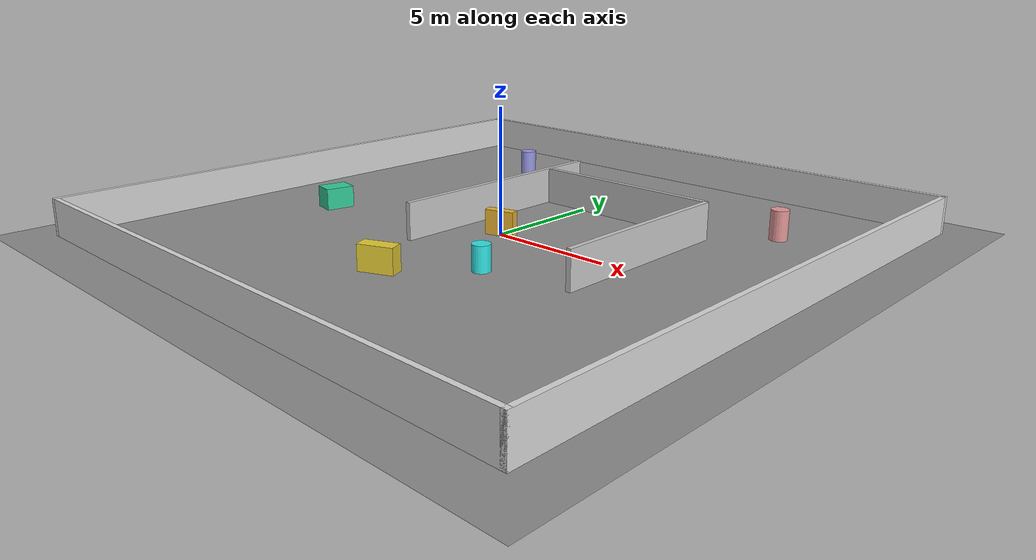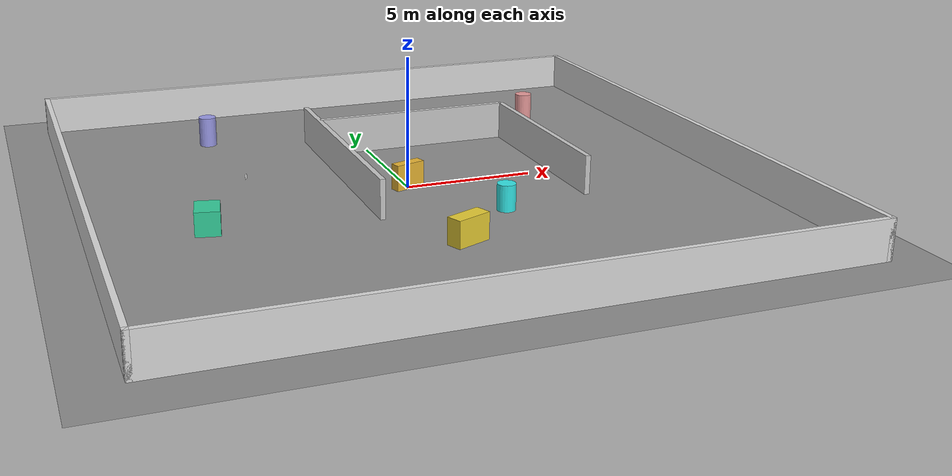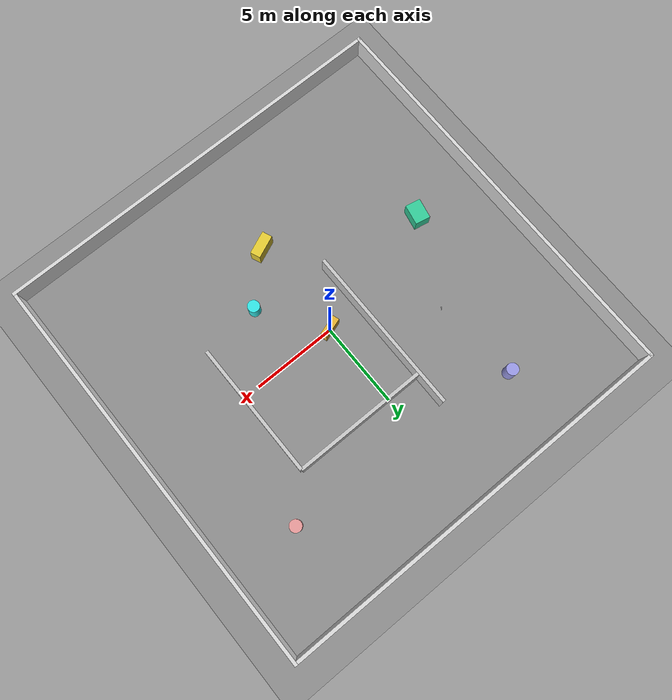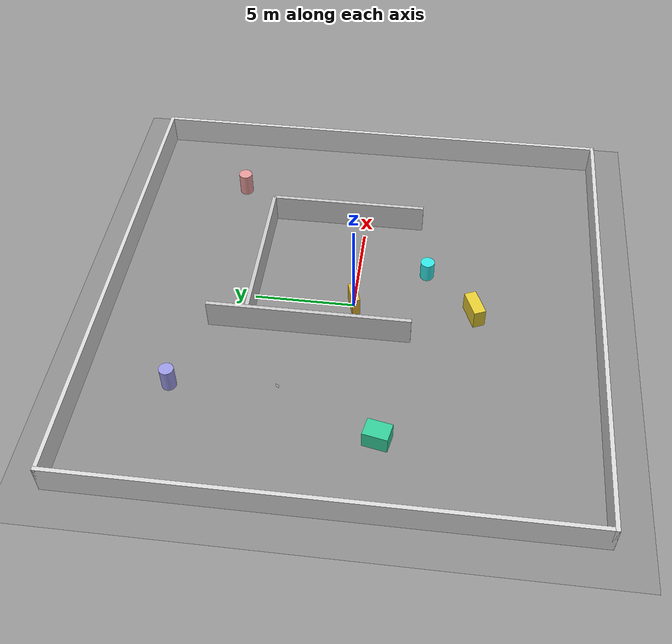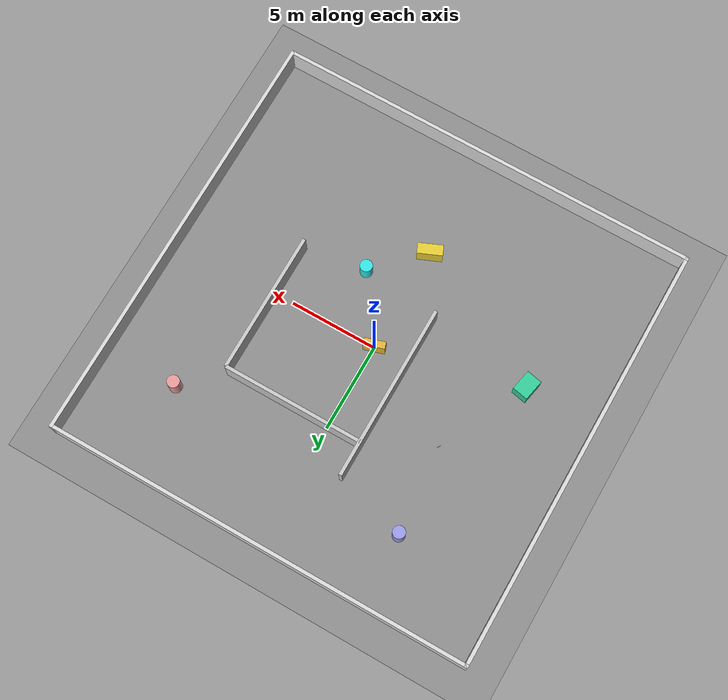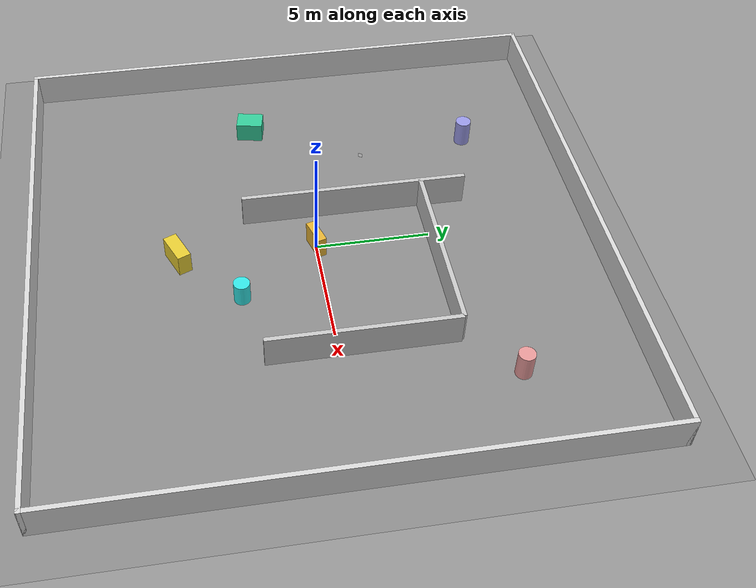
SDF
<?xml version="1.0" ?>
<sdf version="1.7">
  <world name="fra2mo_box_arena">

    <!-- Physics -->
    <physics name="1ms" type="ignored">
      <max_step_size>0.001</max_step_size>
      <real_time_factor>1.0</real_time_factor>
      <real_time_update_rate>1000</real_time_update_rate>
    </physics>

    <!-- IMPORTANT: Gazebo Sim (Ignition) systems (keep them) -->
    <plugin filename="libignition-gazebo-physics-system.so" name="ignition::gazebo::systems::Physics"/>
    <plugin filename="libignition-gazebo-user-commands-system.so" name="ignition::gazebo::systems::UserCommands"/>
    <plugin filename="libignition-gazebo-sensors-system.so" name="ignition::gazebo::systems::Sensors">
      <render_engine>ogre2</render_engine>
    </plugin>
    <plugin filename="libignition-gazebo-scene-broadcaster-system.so" name="ignition::gazebo::systems::SceneBroadcaster"/>

    <!-- Scene / light -->
    <scene>
      <ambient>0.45 0.45 0.45 1</ambient>
      <background>0.9 0.9 0.9 1</background>
    </scene>

    <light type="directional" name="sun">
      <cast_shadows>true</cast_shadows>
      <pose>0 0 10 0 0 0</pose>
      <diffuse>0.9 0.9 0.9 1</diffuse>
      <specular>0.2 0.2 0.2 1</specular>
      <direction>-0.5 0.1 -0.9</direction>
      <attenuation>
        <range>100</range>
        <constant>0.9</constant>
        <linear>0.01</linear>
        <quadratic>0.001</quadratic>
      </attenuation>
    </light>

    <!-- Ground plane -->
    <model name="ground_plane">
      <static>true</static>
      <link name="link">
        <collision name="collision">
          <geometry>
            <plane>
              <normal>0 0 1</normal>
              <size>60 60</size>
            </plane>
          </geometry>
        </collision>
        <visual name="visual">
          <geometry>
            <plane>
              <normal>0 0 1</normal>
              <size>60 60</size>
            </plane>
          </geometry>
          <material>
            <ambient>0.55 0.55 0.55 1</ambient>
            <diffuse>0.55 0.55 0.55 1</diffuse>
            <specular>0.05 0.05 0.05 1</specular>
          </material>
        </visual>
      </link>
    </model>

    <!-- Big box arena (walls) -->
    <!-- Inner arena size: 24 x 24 (meters) -->
    <!-- Wall thickness: 0.2, height: 1.5 -->
    <model name="arena_wall_north">
      <static>true</static>
      <pose>0 12.1 0.75 0 0 0</pose>
      <link name="link">
        <collision name="collision"><geometry><box><size>24.4 0.2 1.5</size></box></geometry></collision>
        <visual name="visual">
          <geometry><box><size>24.4 0.2 1.5</size></box></geometry>
          <material><diffuse>0.85 0.85 0.85 1</diffuse></material>
        </visual>
      </link>
    </model>

    <model name="arena_wall_south">
      <static>true</static>
      <pose>0 -12.1 0.75 0 0 0</pose>
      <link name="link">
        <collision name="collision"><geometry><box><size>24.4 0.2 1.5</size></box></geometry></collision>
        <visual name="visual">
          <geometry><box><size>24.4 0.2 1.5</size></box></geometry>
          <material><diffuse>0.85 0.85 0.85 1</diffuse></material>
        </visual>
      </link>
    </model>

    <model name="arena_wall_east">
      <static>true</static>
      <pose>12.1 0 0.75 0 0 0</pose>
      <link name="link">
        <collision name="collision"><geometry><box><size>0.2 24.4 1.5</size></box></geometry></collision>
        <visual name="visual">
          <geometry><box><size>0.2 24.4 1.5</size></box></geometry>
          <material><diffuse>0.85 0.85 0.85 1</diffuse></material>
        </visual>
      </link>
    </model>

    <model name="arena_wall_west">
      <static>true</static>
      <pose>-12.1 0 0.75 0 0 0</pose>
      <link name="link">
        <collision name="collision"><geometry><box><size>0.2 24.4 1.5</size></box></geometry></collision>
        <visual name="visual">
          <geometry><box><size>0.2 24.4 1.5</size></box></geometry>
          <material><diffuse>0.85 0.85 0.85 1</diffuse></material>
        </visual>
      </link>
    </model>

    <!-- Inner structure: corridor / partitions -->
    <!-- (keep spawn areas clear) -->
    <model name="inner_wall_1">
      <static>true</static>
      <pose>-2 2 0.75 0 0 0</pose>
      <link name="link">
        <collision name="collision"><geometry><box><size>0.2 10.0 1.5</size></box></geometry></collision>
        <visual name="visual">
          <geometry><box><size>0.2 10.0 1.5</size></box></geometry>
          <material><diffuse>0.78 0.78 0.78 1</diffuse></material>
        </visual>
      </link>
    </model>

    <model name="inner_wall_2">
      <static>true</static>
      <pose>2 5 0.75 0 0 0</pose>
      <link name="link">
        <collision name="collision"><geometry><box><size>8.0 0.2 1.5</size></box></geometry></collision>
        <visual name="visual">
          <geometry><box><size>8.0 0.2 1.5</size></box></geometry>
          <material><diffuse>0.78 0.78 0.78 1</diffuse></material>
        </visual>
      </link>
    </model>

    <model name="inner_wall_3">
      <static>true</static>
      <pose>6 1 0.75 0 0 0</pose>
      <link name="link">
        <collision name="collision"><geometry><box><size>0.2 8.0 1.5</size></box></geometry></collision>
        <visual name="visual">
          <geometry><box><size>0.2 8.0 1.5</size></box></geometry>
          <material><diffuse>0.78 0.78 0.78 1</diffuse></material>
        </visual>
      </link>
    </model>

    <!-- Obstacles / landmarks -->
    <model name="obs_box_1">
      <static>true</static>
      <pose>0 0 0.5 0 0 0.3</pose>
      <link name="link">
        <collision name="collision"><geometry><box><size>1.2 0.4 1.0</size></box></geometry></collision>
        <visual name="visual">
          <geometry><box><size>1.2 0.4 1.0</size></box></geometry>
          <material><diffuse>0.9 0.7 0.2 1</diffuse></material>
        </visual>
      </link>
    </model>

    <model name="obs_cyl_1">
      <static>true</static>
      <pose>2.5 -3.5 0.5 0 0 0</pose>
      <link name="link">
        <collision name="collision"><geometry><cylinder><radius>0.35</radius><length>1.0</length></cylinder></geometry></collision>
        <visual name="visual">
          <geometry><cylinder><radius>0.35</radius><length>1.0</length></cylinder></geometry>
          <material><diffuse>0.2 0.9 0.9 1</diffuse></material>
        </visual>
      </link>
    </model>

    <model name="obs_box_2">
      <static>true</static>
      <pose>0 -6 0.5 0 0 0.4</pose>
      <link name="link">
        <collision name="collision"><geometry><box><size>1.4 0.6 1.0</size></box></geometry></collision>
        <visual name="visual">
          <geometry><box><size>1.4 0.6 1.0</size></box></geometry>
          <material><diffuse>0.9 0.8 0.2 1</diffuse></material>
        </visual>
      </link>
    </model>

    <model name="obs_box_3">
      <static>true</static>
      <pose>-8 -2 0.45 0 0 -0.2</pose>
      <link name="link">
        <collision name="collision"><geometry><box><size>0.9 1.2 0.9</size></box></geometry></collision>
        <visual name="visual">
          <geometry><box><size>0.9 1.2 0.9</size></box></geometry>
          <material><diffuse>0.2 0.8 0.6 1</diffuse></material>
        </visual>
      </link>
    </model>

    <model name="pillar_1">
      <static>true</static>
      <pose>-6 8 0.6 0 0 0</pose>
      <link name="link">
        <collision name="collision"><geometry><cylinder><radius>0.35</radius><length>1.2</length></cylinder></geometry></collision>
        <visual name="visual">
          <geometry><cylinder><radius>0.35</radius><length>1.2</length></cylinder></geometry>
          <material><diffuse>0.6 0.6 0.9 1</diffuse></material>
        </visual>
      </link>
    </model>

    <model name="pillar_2">
      <static>true</static>
      <pose>8 7 0.6 0 0 0</pose>
      <link name="link">
        <collision name="collision"><geometry><cylinder><radius>0.35</radius><length>1.2</length></cylinder></geometry></collision>
        <visual name="visual">
          <geometry><cylinder><radius>0.35</radius><length>1.2</length></cylinder></geometry>
          <material><diffuse>0.9 0.6 0.6 1</diffuse></material>
        </visual>
      </link>
    </model>

    <!-- Station tag (ONLY ID 50) -->
    <include>
      <uri>model://arucotag_50</uri>
      <name>station_tag_50</name>
      <pose>-5.55 2.95 0.12 0.87 1.53 0.30</pose>
    </include>

  </world>
</sdf>

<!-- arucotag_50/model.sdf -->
<sdf version="1.7">
  <model name="arucotag_50">
    <static>true</static>
    <link name="base_link">
      <visual name="aruco_visual">
        <geometry>
          <plane>
            <normal>0 0 1</normal>
            <size>0.2 0.2</size>
          </plane>
        </geometry>
        <material>
          <ambient>1 1 1 1</ambient>
          <diffuse>1 1 1 1</diffuse>
          <specular>0 0 0 1</specular>
          <emissive>0 0 0 1</emissive>
          <pbr>
            <metal>
              <albedo_map>model://arucotag_50/aruco-50.png</albedo_map>
            </metal>
          </pbr>
        </material>
      </visual>
    </link>
  </model>
</sdf>
